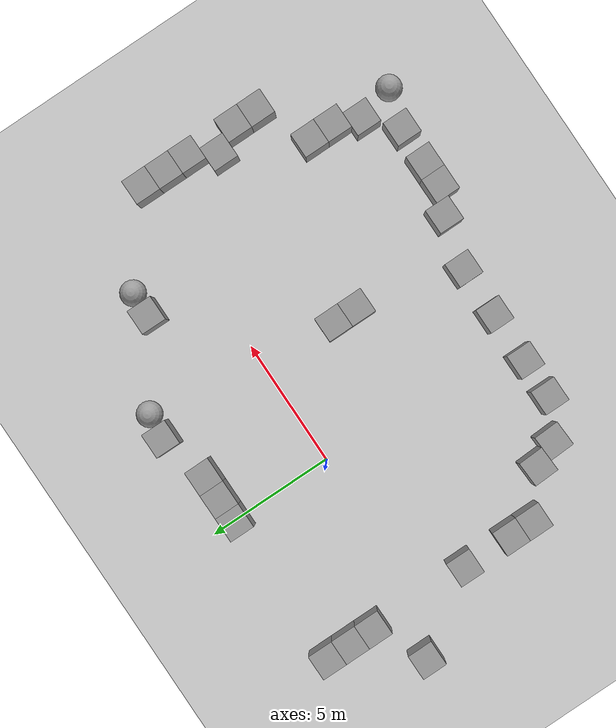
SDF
<sdf version="1.4">
 <world name="default">
  <model name="ground_plane">
   <static>1</static>
   <link name="link">
    <collision name="collision">
     <geometry><plane><normal>0 0 1</normal><size>100 100</size></plane></geometry>
     <surface><friction><ode><mu>100</mu><mu2>50</mu2></ode></friction></surface>
    </collision>
    <visual name="visual">
     <cast_shadows>0</cast_shadows>
     <geometry><plane><normal>0 0 1</normal><size>100 100</size></plane></geometry>
     <material>
      <script><uri>file://media/materials/scripts/gazebo.material</uri><name>Gazebo/Grey</name></script>
     </material>
    </visual>
    <velocity_decay><linear>0</linear><angular>0</angular></velocity_decay>
   </link>
  </model>
  <light name="sun" type="directional">
   <pose>0 0 10 0 -0 0</pose>
   <diffuse>0.8 0.8 0.8 1</diffuse>
   <specular>0.2 0.2 0.2 1</specular>
   <attenuation>
    <range>1000</range>
    <constant>0.9</constant>
    <linear>0.01</linear>
    <quadratic>0.001</quadratic>
   </attenuation>
   <direction>-0.5 0.1 -0.9</direction>
  </light>
  <physics type="ode">
   <max_step_size>0.001</max_step_size>
   <real_time_factor>1</real_time_factor>
   <real_time_update_rate>1000</real_time_update_rate>
   <gravity>0 0 -9.8</gravity>
  </physics>
  <scene><ambient>0.4 0.4 0.4 1</ambient><background>0.7 0.7 0.7 1</background><shadows>1</shadows></scene>
  <spherical_coordinates>
   <surface_model>EARTH_WGS84</surface_model>
   <latitude_deg>0</latitude_deg>
   <longitude_deg>0</longitude_deg>
   <elevation>0</elevation>
   <heading_deg>0</heading_deg>
  </spherical_coordinates>
  <model name="unit_box_1">
   <pose>4 4.52158 0.5 0 -0 0</pose>
   <link name="link">
    <inertial>
     <mass>1</mass>
     <inertia><ixx>1</ixx><ixy>0</ixy><ixz>0</ixz><iyy>1</iyy><iyz>0</iyz><izz>1</izz></inertia>
    </inertial>
    <collision name="collision"><geometry><box><size>1 1 1</size></box></geometry></collision>
    <visual name="visual">
     <geometry><box><size>1 1 1</size></box></geometry>
     <material>
      <script><uri>file://media/materials/scripts/gazebo.material</uri><name>Gazebo/Grey</name></script>
     </material>
    </visual>
    <velocity_decay><linear>0</linear><angular>0</angular></velocity_decay>
   </link>
   <static>0</static>
  </model>
  <model name="unit_box_2">
   <pose>10 -6 0.5 0 0 -1e-06</pose>
   <link name="link">
    <inertial>
     <mass>1</mass>
     <inertia><ixx>1</ixx><ixy>0</ixy><ixz>0</ixz><iyy>1</iyy><iyz>0</iyz><izz>1</izz></inertia>
    </inertial>
    <collision name="collision"><geometry><box><size>1 1 1</size></box></geometry></collision>
    <visual name="visual">
     <geometry><box><size>1 1 1</size></box></geometry>
     <material>
      <script><uri>file://media/materials/scripts/gazebo.material</uri><name>Gazebo/Grey</name></script>
     </material>
    </visual>
    <velocity_decay><linear>0</linear><angular>0</angular></velocity_decay>
   </link>
   <static>0</static>
  </model>
  <model name="unit_box_3">
   <pose>1 -8 0.5 0 -0 0</pose>
   <link name="link">
    <inertial>
     <mass>1</mass>
     <inertia><ixx>1</ixx><ixy>0</ixy><ixz>0</ixz><iyy>1</iyy><iyz>0</iyz><izz>1</izz></inertia>
    </inertial>
    <collision name="collision"><geometry><box><size>1 1 1</size></box></geometry></collision>
    <visual name="visual">
     <geometry><box><size>1 1 1</size></box></geometry>
     <material>
      <script><uri>file://media/materials/scripts/gazebo.material</uri><name>Gazebo/Grey</name></script>
     </material>
    </visual>
    <velocity_decay><linear>0</linear><angular>0</angular></velocity_decay>
   </link>
   <static>0</static>
  </model>
  <model name="unit_box_4">
   <pose>-6 4 0.5 0 -0 -1e-06</pose>
   <link name="link">
    <inertial>
     <mass>1</mass>
     <inertia><ixx>1</ixx><ixy>0</ixy><ixz>0</ixz><iyy>1</iyy><iyz>0</iyz><izz>1</izz></inertia>
    </inertial>
    <collision name="collision"><geometry><box><size>1 1 1</size></box></geometry></collision>
    <visual name="visual">
     <geometry><box><size>1 1 1</size></box></geometry>
     <material>
      <script><uri>file://media/materials/scripts/gazebo.material</uri><name>Gazebo/Grey</name></script>
     </material>
    </visual>
    <velocity_decay><linear>0</linear><angular>0</angular></velocity_decay>
   </link>
   <static>0</static>
  </model>
  <model name="unit_box_5">
   <pose>-6 3 0.5 0 0 -1e-06</pose>
   <link name="link">
    <inertial>
     <mass>1</mass>
     <inertia><ixx>1</ixx><ixy>0</ixy><ixz>0</ixz><iyy>1</iyy><iyz>0</iyz><izz>1</izz></inertia>
    </inertial>
    <collision name="collision"><geometry><box><size>1 1 1</size></box></geometry></collision>
    <visual name="visual">
     <geometry><box><size>1 1 1</size></box></geometry>
     <material>
      <script><uri>file://media/materials/scripts/gazebo.material</uri><name>Gazebo/Grey</name></script>
     </material>
    </visual>
    <velocity_decay><linear>0</linear><angular>0</angular></velocity_decay>
   </link>
   <static>0</static>
  </model>
  <model name="unit_box_6">
   <pose>-6 2 0.5 0 -0 0</pose>
   <link name="link">
    <inertial>
     <mass>1</mass>
     <inertia><ixx>1</ixx><ixy>0</ixy><ixz>0</ixz><iyy>1</iyy><iyz>0</iyz><izz>1</izz></inertia>
    </inertial>
    <collision name="collision"><geometry><box><size>1 1 1</size></box></geometry></collision>
    <visual name="visual">
     <geometry><box><size>1 1 1</size></box></geometry>
     <material>
      <script><uri>file://media/materials/scripts/gazebo.material</uri><name>Gazebo/Grey</name></script>
     </material>
    </visual>
    <velocity_decay><linear>0</linear><angular>0</angular></velocity_decay>
   </link>
   <static>0</static>
  </model>
  <model name="unit_sphere_1">
   <pose>5 4.42068 0.5 0 -0 0</pose>
   <link name="link">
    <inertial>
     <mass>1</mass>
     <inertia><ixx>1</ixx><ixy>0</ixy><ixz>0</ixz><iyy>1</iyy><iyz>0</iyz><izz>1</izz></inertia>
    </inertial>
    <collision name="collision"><geometry><sphere><radius>0.5</radius></sphere></geometry></collision>
    <visual name="visual">
     <geometry><sphere><radius>0.5</radius></sphere></geometry>
     <material>
      <script><uri>file://media/materials/scripts/gazebo.material</uri><name>Gazebo/Grey</name></script>
     </material>
    </visual>
    <velocity_decay><linear>0</linear><angular>0</angular></velocity_decay>
   </link>
   <static>0</static>
  </model>
  <model name="unit_box_7">
   <pose>8 2.45319 0.5 0 -0 0</pose>
   <link name="link">
    <inertial>
     <mass>1</mass>
     <inertia><ixx>1</ixx><ixy>0</ixy><ixz>0</ixz><iyy>1</iyy><iyz>0</iyz><izz>1</izz></inertia>
    </inertial>
    <collision name="collision"><geometry><box><size>1 1 1</size></box></geometry></collision>
    <visual name="visual">
     <geometry><box><size>1 1 1</size></box></geometry>
     <material>
      <script><uri>file://media/materials/scripts/gazebo.material</uri><name>Gazebo/Grey</name></script>
     </material>
    </visual>
    <velocity_decay><linear>0</linear><angular>0</angular></velocity_decay>
   </link>
   <static>0</static>
  </model>
  <model name="unit_box_8">
   <pose>3 -8 0.5 0 -0 0</pose>
   <link name="link">
    <inertial>
     <mass>1</mass>
     <inertia><ixx>1</ixx><ixy>0</ixy><ixz>0</ixz><iyy>1</iyy><iyz>0</iyz><izz>1</izz></inertia>
    </inertial>
    <collision name="collision"><geometry><box><size>1 1 1</size></box></geometry></collision>
    <visual name="visual">
     <geometry><box><size>1 1 1</size></box></geometry>
     <material>
      <script><uri>file://media/materials/scripts/gazebo.material</uri><name>Gazebo/Grey</name></script>
     </material>
    </visual>
    <velocity_decay><linear>0</linear><angular>0</angular></velocity_decay>
   </link>
   <static>0</static>
  </model>
  <model name="unit_box_9">
   <pose>-6 -5 0.5 0 -0 0</pose>
   <link name="link">
    <inertial>
     <mass>1</mass>
     <inertia><ixx>1</ixx><ixy>0</ixy><ixz>0</ixz><iyy>1</iyy><iyz>0</iyz><izz>1</izz></inertia>
    </inertial>
    <collision name="collision"><geometry><box><size>1 1 1</size></box></geometry></collision>
    <visual name="visual">
     <geometry><box><size>1 1 1</size></box></geometry>
     <material>
      <script><uri>file://media/materials/scripts/gazebo.material</uri><name>Gazebo/Grey</name></script>
     </material>
    </visual>
    <velocity_decay><linear>0</linear><angular>0</angular></velocity_decay>
   </link>
   <static>0</static>
  </model>
  <model name="unit_box_10">
   <pose>-6 -2 0.5 0 -0 0</pose>
   <link name="link">
    <inertial>
     <mass>1</mass>
     <inertia><ixx>1</ixx><ixy>0</ixy><ixz>0</ixz><iyy>1</iyy><iyz>0</iyz><izz>1</izz></inertia>
    </inertial>
    <collision name="collision"><geometry><box><size>1 1 1</size></box></geometry></collision>
    <visual name="visual">
     <geometry><box><size>1 1 1</size></box></geometry>
     <material>
      <script><uri>file://media/materials/scripts/gazebo.material</uri><name>Gazebo/Grey</name></script>
     </material>
    </visual>
    <velocity_decay><linear>0</linear><angular>0</angular></velocity_decay>
   </link>
   <static>0</static>
  </model>
  <model name="unit_sphere_2">
   <pose>10 -9.47368 0.5 0 -0 0</pose>
   <link name="link">
    <inertial>
     <mass>1</mass>
     <inertia><ixx>1</ixx><ixy>0</ixy><ixz>0</ixz><iyy>1</iyy><iyz>0</iyz><izz>1</izz></inertia>
    </inertial>
    <collision name="collision"><geometry><sphere><radius>0.5</radius></sphere></geometry></collision>
    <visual name="visual">
     <geometry><sphere><radius>0.5</radius></sphere></geometry>
     <material>
      <script><uri>file://media/materials/scripts/gazebo.material</uri><name>Gazebo/Grey</name></script>
     </material>
    </visual>
    <velocity_decay><linear>0</linear><angular>0</angular></velocity_decay>
   </link>
   <static>0</static>
  </model>
  <model name="unit_box_11">
   <pose>11.4237 -3 0.5 0 -0 6e-06</pose>
   <link name="link">
    <inertial>
     <mass>1</mass>
     <inertia><ixx>1</ixx><ixy>0</ixy><ixz>0</ixz><iyy>1</iyy><iyz>0</iyz><izz>1</izz></inertia>
    </inertial>
    <collision name="collision"><geometry><box><size>1 1 1</size></box></geometry></collision>
    <visual name="visual">
     <geometry><box><size>1 1 1</size></box></geometry>
     <material>
      <script><uri>file://media/materials/scripts/gazebo.material</uri><name>Gazebo/Grey</name></script>
     </material>
    </visual>
    <velocity_decay><linear>0</linear><angular>0</angular></velocity_decay>
   </link>
   <static>0</static>
  </model>
  <model name="unit_box_12">
   <pose>4 -4 0.5 0 -0 -1e-06</pose>
   <link name="link">
    <inertial>
     <mass>1</mass>
     <inertia><ixx>1</ixx><ixy>0</ixy><ixz>0</ixz><iyy>1</iyy><iyz>0</iyz><izz>1</izz></inertia>
    </inertial>
    <collision name="collision"><geometry><box><size>1 1 1</size></box></geometry></collision>
    <visual name="visual">
     <geometry><box><size>1 1 1</size></box></geometry>
     <material>
      <script><uri>file://media/materials/scripts/gazebo.material</uri><name>Gazebo/Grey</name></script>
     </material>
    </visual>
    <velocity_decay><linear>0</linear><angular>0</angular></velocity_decay>
   </link>
   <static>0</static>
  </model>
  <model name="unit_box_13">
   <pose>12 -5 0.5 0 -0 6e-06</pose>
   <link name="link">
    <inertial>
     <mass>1</mass>
     <inertia><ixx>1</ixx><ixy>0</ixy><ixz>0</ixz><iyy>1</iyy><iyz>0</iyz><izz>1</izz></inertia>
    </inertial>
    <collision name="collision"><geometry><box><size>1 1 1</size></box></geometry></collision>
    <visual name="visual">
     <geometry><box><size>1 1 1</size></box></geometry>
     <material>
      <script><uri>file://media/materials/scripts/gazebo.material</uri><name>Gazebo/Grey</name></script>
     </material>
    </visual>
    <velocity_decay><linear>0</linear><angular>0</angular></velocity_decay>
   </link>
   <static>0</static>
  </model>
  <model name="unit_box_14">
   <pose>12 -0.999997 0.5 0 -0 -8e-06</pose>
   <link name="link">
    <inertial>
     <mass>1</mass>
     <inertia><ixx>1</ixx><ixy>0</ixy><ixz>0</ixz><iyy>1</iyy><iyz>0</iyz><izz>1</izz></inertia>
    </inertial>
    <collision name="collision"><geometry><box><size>1 1 1</size></box></geometry></collision>
    <visual name="visual">
     <geometry><box><size>1 1 1</size></box></geometry>
     <material>
      <script><uri>file://media/materials/scripts/gazebo.material</uri><name>Gazebo/Grey</name></script>
     </material>
    </visual>
    <velocity_decay><linear>0</linear><angular>0</angular></velocity_decay>
   </link>
   <static>0</static>
  </model>
  <model name="unit_box_15">
   <pose>-2e-06 4 0.5 0 -0 3e-06</pose>
   <link name="link">
    <inertial>
     <mass>1</mass>
     <inertia><ixx>1</ixx><ixy>0</ixy><ixz>0</ixz><iyy>1</iyy><iyz>0</iyz><izz>1</izz></inertia>
    </inertial>
    <collision name="collision"><geometry><box><size>1 1 1</size></box></geometry></collision>
    <visual name="visual">
     <geometry><box><size>1 1 1</size></box></geometry>
     <material>
      <script><uri>file://media/materials/scripts/gazebo.material</uri><name>Gazebo/Grey</name></script>
     </material>
    </visual>
    <velocity_decay><linear>0</linear><angular>0</angular></velocity_decay>
   </link>
   <static>0</static>
  </model>
  <model name="unit_box_16">
   <pose>0.999999 4 0.5 0 -0 1e-06</pose>
   <link name="link">
    <inertial>
     <mass>1</mass>
     <inertia><ixx>1</ixx><ixy>0</ixy><ixz>0</ixz><iyy>1</iyy><iyz>0</iyz><izz>1</izz></inertia>
    </inertial>
    <collision name="collision"><geometry><box><size>1 1 1</size></box></geometry></collision>
    <visual name="visual">
     <geometry><box><size>1 1 1</size></box></geometry>
     <material>
      <script><uri>file://media/materials/scripts/gazebo.material</uri><name>Gazebo/Grey</name></script>
     </material>
    </visual>
    <velocity_decay><linear>0</linear><angular>0</angular></velocity_decay>
   </link>
   <static>0</static>
  </model>
  <model name="unit_box_17">
   <pose>2 4 0.5 0 -0 3e-06</pose>
   <link name="link">
    <inertial>
     <mass>1</mass>
     <inertia><ixx>1</ixx><ixy>0</ixy><ixz>0</ixz><iyy>1</iyy><iyz>0</iyz><izz>1</izz></inertia>
    </inertial>
    <collision name="collision"><geometry><box><size>1 1 1</size></box></geometry></collision>
    <visual name="visual">
     <geometry><box><size>1 1 1</size></box></geometry>
     <material>
      <script><uri>file://media/materials/scripts/gazebo.material</uri><name>Gazebo/Grey</name></script>
     </material>
    </visual>
    <velocity_decay><linear>0</linear><angular>0</angular></velocity_decay>
   </link>
   <static>0</static>
  </model>
  <model name="unit_box_18">
   <pose>5 -8.50001 0.5 -0 -0 -0</pose>
   <link name="link">
    <inertial>
     <mass>1</mass>
     <inertia><ixx>1</ixx><ixy>0</ixy><ixz>0</ixz><iyy>1</iyy><iyz>0</iyz><izz>1</izz></inertia>
    </inertial>
    <collision name="collision"><geometry><box><size>1 1 1</size></box></geometry></collision>
    <visual name="visual">
     <geometry><box><size>1 1 1</size></box></geometry>
     <material>
      <script><uri>file://media/materials/scripts/gazebo.material</uri><name>Gazebo/Grey</name></script>
     </material>
    </visual>
    <velocity_decay><linear>0</linear><angular>0</angular></velocity_decay>
   </link>
   <static>0</static>
  </model>
  <model name="unit_box_19">
   <pose>-4.44825 -6.23455 0.5 0 -0 0.043687</pose>
   <link name="link">
    <inertial>
     <mass>1</mass>
     <inertia><ixx>1</ixx><ixy>0</ixy><ixz>0</ixz><iyy>1</iyy><iyz>0</iyz><izz>1</izz></inertia>
    </inertial>
    <collision name="collision"><geometry><box><size>1 1 1</size></box></geometry></collision>
    <visual name="visual">
     <geometry><box><size>1 1 1</size></box></geometry>
     <material>
      <script><uri>file://media/materials/scripts/gazebo.material</uri><name>Gazebo/Grey</name></script>
     </material>
    </visual>
    <velocity_decay><linear>0</linear><angular>0</angular></velocity_decay>
   </link>
   <static>0</static>
  </model>
  <model name="unit_box_1_0">
   <pose>6 -9 0.5 -0 -0 -2e-06</pose>
   <link name="link">
    <inertial>
     <mass>1</mass>
     <inertia><ixx>1</ixx><ixy>0</ixy><ixz>0</ixz><iyy>1</iyy><iyz>0</iyz><izz>1</izz></inertia>
    </inertial>
    <collision name="collision"><geometry><box><size>1 1 1</size></box></geometry></collision>
    <visual name="visual">
     <geometry><box><size>1 1 1</size></box></geometry>
     <material>
      <script><uri>file://media/materials/scripts/gazebo.material</uri><name>Gazebo/Grey</name></script>
     </material>
    </visual>
    <velocity_decay><linear>0</linear><angular>0</angular></velocity_decay>
   </link>
   <static>0</static>
  </model>
  <model name="unit_box_2_0">
   <pose>7 -9 0.5 0 -0 0</pose>
   <link name="link">
    <inertial>
     <mass>1</mass>
     <inertia><ixx>1</ixx><ixy>0</ixy><ixz>0</ixz><iyy>1</iyy><iyz>0</iyz><izz>1</izz></inertia>
    </inertial>
    <collision name="collision"><geometry><box><size>1 1 1</size></box></geometry></collision>
    <visual name="visual">
     <geometry><box><size>1 1 1</size></box></geometry>
     <material>
      <script><uri>file://media/materials/scripts/gazebo.material</uri><name>Gazebo/Grey</name></script>
     </material>
    </visual>
    <velocity_decay><linear>0</linear><angular>0</angular></velocity_decay>
   </link>
   <static>0</static>
  </model>
  <model name="unit_box_3_0">
   <pose>8.47504 -9 0.5 0 -0 0</pose>
   <link name="link">
    <inertial>
     <mass>1</mass>
     <inertia><ixx>1</ixx><ixy>0</ixy><ixz>0</ixz><iyy>1</iyy><iyz>0</iyz><izz>1</izz></inertia>
    </inertial>
    <collision name="collision"><geometry><box><size>1 1 1</size></box></geometry></collision>
    <visual name="visual">
     <geometry><box><size>1 1 1</size></box></geometry>
     <material>
      <script><uri>file://media/materials/scripts/gazebo.material</uri><name>Gazebo/Grey</name></script>
     </material>
    </visual>
    <velocity_decay><linear>0</linear><angular>0</angular></velocity_decay>
   </link>
   <static>0</static>
  </model>
  <model name="unit_box_4_0">
   <pose>9.59951 -8 0.5 0 0 -2e-06</pose>
   <link name="link">
    <inertial>
     <mass>1</mass>
     <inertia><ixx>1</ixx><ixy>0</ixy><ixz>0</ixz><iyy>1</iyy><iyz>0</iyz><izz>1</izz></inertia>
    </inertial>
    <collision name="collision"><geometry><box><size>1 1 1</size></box></geometry></collision>
    <visual name="visual">
     <geometry><box><size>1 1 1</size></box></geometry>
     <material>
      <script><uri>file://media/materials/scripts/gazebo.material</uri><name>Gazebo/Grey</name></script>
     </material>
    </visual>
    <velocity_decay><linear>0</linear><angular>0</angular></velocity_decay>
   </link>
   <static>0</static>
  </model>
  <model name="unit_box_5_0">
   <pose>10 -7 0.5 -0 -0 -2e-06</pose>
   <link name="link">
    <inertial>
     <mass>1</mass>
     <inertia><ixx>1</ixx><ixy>0</ixy><ixz>0</ixz><iyy>1</iyy><iyz>0</iyz><izz>1</izz></inertia>
    </inertial>
    <collision name="collision"><geometry><box><size>1 1 1</size></box></geometry></collision>
    <visual name="visual">
     <geometry><box><size>1 1 1</size></box></geometry>
     <material>
      <script><uri>file://media/materials/scripts/gazebo.material</uri><name>Gazebo/Grey</name></script>
     </material>
    </visual>
    <velocity_decay><linear>0</linear><angular>0</angular></velocity_decay>
   </link>
   <static>0</static>
  </model>
  <model name="unit_box_6_0">
   <pose>12 -4 0.5 0 -0 6e-06</pose>
   <link name="link">
    <inertial>
     <mass>1</mass>
     <inertia><ixx>1</ixx><ixy>0</ixy><ixz>0</ixz><iyy>1</iyy><iyz>0</iyz><izz>1</izz></inertia>
    </inertial>
    <collision name="collision"><geometry><box><size>1 1 1</size></box></geometry></collision>
    <visual name="visual">
     <geometry><box><size>1 1 1</size></box></geometry>
     <material>
      <script><uri>file://media/materials/scripts/gazebo.material</uri><name>Gazebo/Grey</name></script>
     </material>
    </visual>
    <velocity_decay><linear>0</linear><angular>0</angular></velocity_decay>
   </link>
   <static>0</static>
  </model>
  <model name="unit_box_7_0">
   <pose>12 -2 0.5 0 0 -8e-06</pose>
   <link name="link">
    <inertial>
     <mass>1</mass>
     <inertia><ixx>1</ixx><ixy>0</ixy><ixz>0</ixz><iyy>1</iyy><iyz>0</iyz><izz>1</izz></inertia>
    </inertial>
    <collision name="collision"><geometry><box><size>1 1 1</size></box></geometry></collision>
    <visual name="visual">
     <geometry><box><size>1 1 1</size></box></geometry>
     <material>
      <script><uri>file://media/materials/scripts/gazebo.material</uri><name>Gazebo/Grey</name></script>
     </material>
    </visual>
    <velocity_decay><linear>0</linear><angular>0</angular></velocity_decay>
   </link>
   <static>0</static>
  </model>
  <model name="unit_box_8_0">
   <pose>-8 1 0.5 0 -0 0</pose>
   <link name="link">
    <inertial>
     <mass>1</mass>
     <inertia><ixx>1</ixx><ixy>0</ixy><ixz>0</ixz><iyy>1</iyy><iyz>0</iyz><izz>1</izz></inertia>
    </inertial>
    <collision name="collision"><geometry><box><size>1 1 1</size></box></geometry></collision>
    <visual name="visual">
     <geometry><box><size>1 1 1</size></box></geometry>
     <material>
      <script><uri>file://media/materials/scripts/gazebo.material</uri><name>Gazebo/Grey</name></script>
     </material>
    </visual>
    <velocity_decay><linear>0</linear><angular>0</angular></velocity_decay>
   </link>
   <static>0</static>
  </model>
  <model name="unit_box_9_0">
   <pose>-6 -4 0.5 0 -0 0</pose>
   <link name="link">
    <inertial>
     <mass>1</mass>
     <inertia><ixx>1</ixx><ixy>0</ixy><ixz>0</ixz><iyy>1</iyy><iyz>0</iyz><izz>1</izz></inertia>
    </inertial>
    <collision name="collision"><geometry><box><size>1 1 1</size></box></geometry></collision>
    <visual name="visual">
     <geometry><box><size>1 1 1</size></box></geometry>
     <material>
      <script><uri>file://media/materials/scripts/gazebo.material</uri><name>Gazebo/Grey</name></script>
     </material>
    </visual>
    <velocity_decay><linear>0</linear><angular>0</angular></velocity_decay>
   </link>
   <static>0</static>
  </model>
  <model name="unit_box_10_0">
   <pose>12 4e-06 0.5 0 0 -7e-06</pose>
   <link name="link">
    <inertial>
     <mass>1</mass>
     <inertia><ixx>1</ixx><ixy>0</ixy><ixz>0</ixz><iyy>1</iyy><iyz>0</iyz><izz>1</izz></inertia>
    </inertial>
    <collision name="collision"><geometry><box><size>1 1 1</size></box></geometry></collision>
    <visual name="visual">
     <geometry><box><size>1 1 1</size></box></geometry>
     <material>
      <script><uri>file://media/materials/scripts/gazebo.material</uri><name>Gazebo/Grey</name></script>
     </material>
    </visual>
    <velocity_decay><linear>0</linear><angular>0</angular></velocity_decay>
   </link>
   <static>0</static>
  </model>
  <model name="unit_sphere_1_0">
   <pose>9 2.45364 0.5 0 -0 0</pose>
   <link name="link">
    <inertial>
     <mass>1</mass>
     <inertia><ixx>1</ixx><ixy>0</ixy><ixz>0</ixz><iyy>1</iyy><iyz>0</iyz><izz>1</izz></inertia>
    </inertial>
    <collision name="collision"><geometry><sphere><radius>0.5</radius></sphere></geometry></collision>
    <visual name="visual">
     <geometry><sphere><radius>0.5</radius></sphere></geometry>
     <material>
      <script><uri>file://media/materials/scripts/gazebo.material</uri><name>Gazebo/Grey</name></script>
     </material>
    </visual>
    <velocity_decay><linear>0</linear><angular>0</angular></velocity_decay>
   </link>
   <static>0</static>
  </model>
  <model name="unit_box_12_0">
   <pose>4 -3 0.5 0 0 -1e-06</pose>
   <link name="link">
    <inertial>
     <mass>1</mass>
     <inertia><ixx>1</ixx><ixy>0</ixy><ixz>0</ixz><iyy>1</iyy><iyz>0</iyz><izz>1</izz></inertia>
    </inertial>
    <collision name="collision"><geometry><box><size>1 1 1</size></box></geometry></collision>
    <visual name="visual">
     <geometry><box><size>1 1 1</size></box></geometry>
     <material>
      <script><uri>file://media/materials/scripts/gazebo.material</uri><name>Gazebo/Grey</name></script>
     </material>
    </visual>
    <velocity_decay><linear>0</linear><angular>0</angular></velocity_decay>
   </link>
   <static>0</static>
  </model>
  <model name="unit_box_13_0">
   <pose>-1 -8 0.5 0 -0 0</pose>
   <link name="link">
    <inertial>
     <mass>1</mass>
     <inertia><ixx>1</ixx><ixy>0</ixy><ixz>0</ixz><iyy>1</iyy><iyz>0</iyz><izz>1</izz></inertia>
    </inertial>
    <collision name="collision"><geometry><box><size>1 1 1</size></box></geometry></collision>
    <visual name="visual">
     <geometry><box><size>1 1 1</size></box></geometry>
     <material>
      <script><uri>file://media/materials/scripts/gazebo.material</uri><name>Gazebo/Grey</name></script>
     </material>
    </visual>
    <velocity_decay><linear>0</linear><angular>0</angular></velocity_decay>
   </link>
   <static>0</static>
  </model>
  <model name="unit_box_14_0">
   <pose>-2.55224 -8 0.5 0 -0 0</pose>
   <link name="link">
    <inertial>
     <mass>1</mass>
     <inertia><ixx>1</ixx><ixy>0</ixy><ixz>0</ixz><iyy>1</iyy><iyz>0</iyz><izz>1</izz></inertia>
    </inertial>
    <collision name="collision"><geometry><box><size>1 1 1</size></box></geometry></collision>
    <visual name="visual">
     <geometry><box><size>1 1 1</size></box></geometry>
     <material>
      <script><uri>file://media/materials/scripts/gazebo.material</uri><name>Gazebo/Grey</name></script>
     </material>
    </visual>
    <velocity_decay><linear>0</linear><angular>0</angular></velocity_decay>
   </link>
   <static>0</static>
  </model>
  <model name="unit_box_15_0">
   <pose>-3.98798 -7.21549 0.5 0 -0 0.04369</pose>
   <link name="link">
    <inertial>
     <mass>1</mass>
     <inertia><ixx>1</ixx><ixy>0</ixy><ixz>0</ixz><iyy>1</iyy><iyz>0</iyz><izz>1</izz></inertia>
    </inertial>
    <collision name="collision"><geometry><box><size>1 1 1</size></box></geometry></collision>
    <visual name="visual">
     <geometry><box><size>1 1 1</size></box></geometry>
     <material>
      <script><uri>file://media/materials/scripts/gazebo.material</uri><name>Gazebo/Grey</name></script>
     </material>
    </visual>
    <velocity_decay><linear>0</linear><angular>0</angular></velocity_decay>
   </link>
   <static>0</static>
  </model>
 </world>
</sdf>
